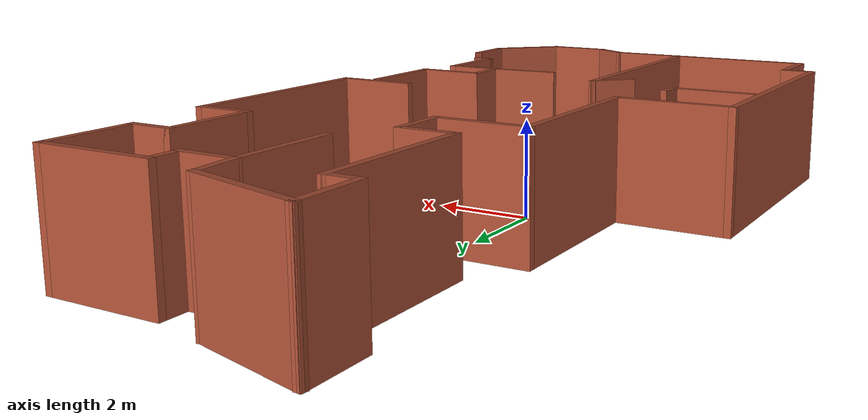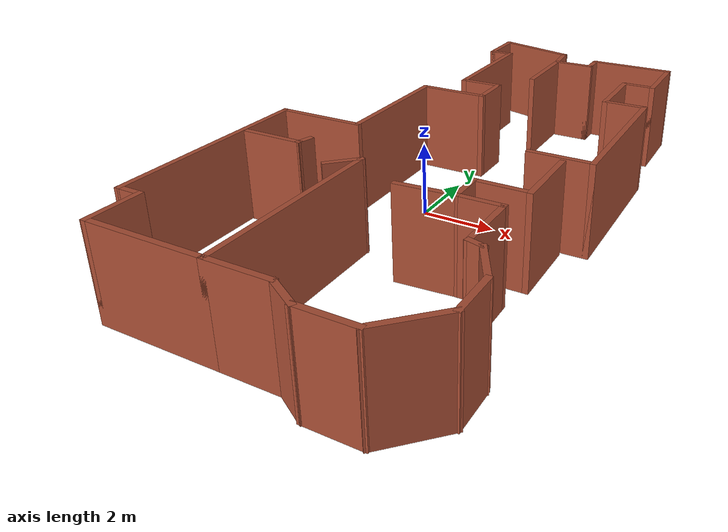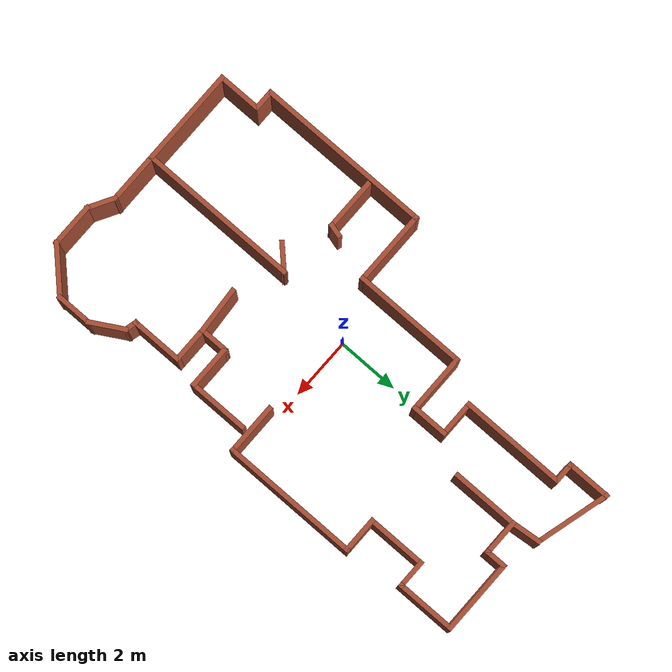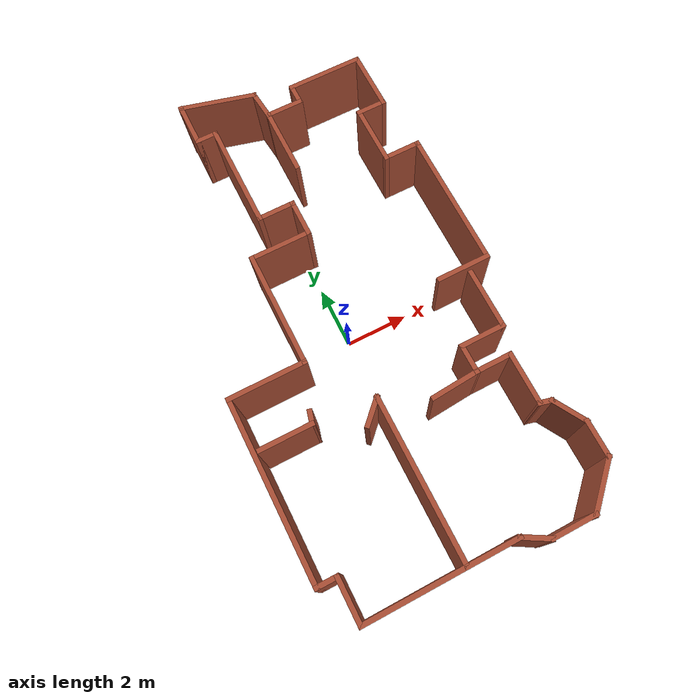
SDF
<?xml version='1.0'?>
<sdf version='1.6'>
  <model name='map_48'>
    <pose frame=''>0.307885 0.354091 0 0 -0 0</pose>
    <link name='Wall_0'>
      <collision name='Wall_0_Collision'>
        <geometry>
          <box>
            <size>2.5 0.15 2.5</size>
          </box>
        </geometry>
        <pose frame=''>0 0 1.25 0 -0 0</pose>
      </collision>
      <visual name='Wall_0_Visual'>
        <pose frame=''>0 0 1.25 0 -0 0</pose>
        <geometry>
          <box>
            <size>2.5 0.15 2.5</size>
          </box>
        </geometry>
        <material>
          <script>
            <uri>file://media/materials/scripts/gazebo.material</uri>
            <name>Gazebo/Bricks</name>
          </script>
          <ambient>1 1 1 1</ambient>
        </material>
        <meta>
          <layer>0</layer>
        </meta>
      </visual>
      <pose frame=''>-0.646801 8.09049 0 0 -0 2.87979</pose>
    </link>
    <link name='Wall_1'>
      <collision name='Wall_1_Collision'>
        <geometry>
          <box>
            <size>1.5 0.15 2.5</size>
          </box>
        </geometry>
        <pose frame=''>0 0 1.25 0 -0 0</pose>
      </collision>
      <visual name='Wall_1_Visual'>
        <pose frame=''>0 0 1.25 0 -0 0</pose>
        <geometry>
          <box>
            <size>1.5 0.15 2.5</size>
          </box>
        </geometry>
        <material>
          <script>
            <uri>file://media/materials/scripts/gazebo.material</uri>
            <name>Gazebo/Bricks</name>
          </script>
          <ambient>1 1 1 1</ambient>
        </material>
        <meta>
          <layer>0</layer>
        </meta>
      </visual>
      <pose frame=''>-1.78176 7.7196 0 0 -0 -1.5708</pose>
    </link>
    <link name='Wall_10'>
      <collision name='Wall_10_Collision'>
        <geometry>
          <box>
            <size>0.75 0.15 2.5</size>
          </box>
        </geometry>
        <pose frame=''>0 0 1.25 0 -0 0</pose>
      </collision>
      <visual name='Wall_10_Visual'>
        <pose frame=''>0 0 1.25 0 -0 0</pose>
        <geometry>
          <box>
            <size>0.75 0.15 2.5</size>
          </box>
        </geometry>
        <material>
          <script>
            <uri>file://media/materials/scripts/gazebo.material</uri>
            <name>Gazebo/Bricks</name>
          </script>
          <ambient>1 1 1 1</ambient>
        </material>
        <meta>
          <layer>0</layer>
        </meta>
      </visual>
      <pose frame=''>-3.98176 -6.60539 0 0 -0 0</pose>
    </link>
    <link name='Wall_11'>
      <collision name='Wall_11_Collision'>
        <geometry>
          <box>
            <size>1.5 0.15 2.5</size>
          </box>
        </geometry>
        <pose frame=''>0 0 1.25 0 -0 0</pose>
      </collision>
      <visual name='Wall_11_Visual'>
        <pose frame=''>0 0 1.25 0 -0 0</pose>
        <geometry>
          <box>
            <size>1.5 0.15 2.5</size>
          </box>
        </geometry>
        <material>
          <script>
            <uri>file://media/materials/scripts/gazebo.material</uri>
            <name>Gazebo/Bricks</name>
          </script>
          <ambient>1 1 1 1</ambient>
        </material>
        <meta>
          <layer>0</layer>
        </meta>
      </visual>
      <pose frame=''>-3.68176 -7.2804 0 0 -0 -1.5708</pose>
    </link>
    <link name='Wall_12'>
      <collision name='Wall_12_Collision'>
        <geometry>
          <box>
            <size>3.25 0.15 2.5</size>
          </box>
        </geometry>
        <pose frame=''>0 0 1.25 0 -0 0</pose>
      </collision>
      <visual name='Wall_12_Visual'>
        <pose frame=''>0 0 1.25 0 -0 0</pose>
        <geometry>
          <box>
            <size>3.25 0.15 2.5</size>
          </box>
        </geometry>
        <material>
          <script>
            <uri>file://media/materials/scripts/gazebo.material</uri>
            <name>Gazebo/Bricks</name>
          </script>
          <ambient>1 1 1 1</ambient>
        </material>
        <meta>
          <layer>0</layer>
        </meta>
      </visual>
      <pose frame=''>-2.13176 -7.9554 0 0 -0 0</pose>
    </link>
    <link name='Wall_13'>
      <collision name='Wall_13_Collision'>
        <geometry>
          <box>
            <size>5.25 0.15 2.5</size>
          </box>
        </geometry>
        <pose frame=''>0 0 1.25 0 -0 0</pose>
      </collision>
      <visual name='Wall_13_Visual'>
        <pose frame=''>0 0 1.25 0 -0 0</pose>
        <geometry>
          <box>
            <size>5.25 0.15 2.5</size>
          </box>
        </geometry>
        <material>
          <script>
            <uri>file://media/materials/scripts/gazebo.material</uri>
            <name>Gazebo/Bricks</name>
          </script>
          <ambient>1 1 1 1</ambient>
        </material>
        <meta>
          <layer>0</layer>
        </meta>
      </visual>
      <pose frame=''>-0.581764 -5.4054 0 0 -0 1.5708</pose>
    </link>
    <link name='Wall_15'>
      <collision name='Wall_15_Collision'>
        <geometry>
          <box>
            <size>1.75 0.15 2.5</size>
          </box>
        </geometry>
        <pose frame=''>0 0 1.25 0 -0 0</pose>
      </collision>
      <visual name='Wall_15_Visual'>
        <pose frame=''>0 0 1.25 0 -0 0</pose>
        <geometry>
          <box>
            <size>1.75 0.15 2.5</size>
          </box>
        </geometry>
        <material>
          <script>
            <uri>file://media/materials/scripts/gazebo.material</uri>
            <name>Gazebo/Bricks</name>
          </script>
          <ambient>1 1 1 1</ambient>
        </material>
        <meta>
          <layer>0</layer>
        </meta>
      </visual>
      <pose frame=''>0.218236 -7.9554 0 0 -0 0</pose>
    </link>
    <link name='Wall_16'>
      <collision name='Wall_16_Collision'>
        <geometry>
          <box>
            <size>1 0.15 2.5</size>
          </box>
        </geometry>
        <pose frame=''>0 0 1.25 0 -0 0</pose>
      </collision>
      <visual name='Wall_16_Visual'>
        <pose frame=''>0 0 1.25 0 -0 0</pose>
        <geometry>
          <box>
            <size>1 0.15 2.5</size>
          </box>
        </geometry>
        <material>
          <script>
            <uri>file://media/materials/scripts/gazebo.material</uri>
            <name>Gazebo/Bricks</name>
          </script>
          <ambient>1 1 1 1</ambient>
        </material>
        <meta>
          <layer>0</layer>
        </meta>
      </visual>
      <pose frame=''>1.3863 -8.16789 0 0 -0 -0.523599</pose>
    </link>
    <link name='Wall_17'>
      <collision name='Wall_17_Collision'>
        <geometry>
          <box>
            <size>1.5 0.15 2.5</size>
          </box>
        </geometry>
        <pose frame=''>0 0 1.25 0 -0 0</pose>
      </collision>
      <visual name='Wall_17_Visual'>
        <pose frame=''>0 0 1.25 0 -0 0</pose>
        <geometry>
          <box>
            <size>1.5 0.15 2.5</size>
          </box>
        </geometry>
        <material>
          <script>
            <uri>file://media/materials/scripts/gazebo.material</uri>
            <name>Gazebo/Bricks</name>
          </script>
          <ambient>1 1 1 1</ambient>
        </material>
        <meta>
          <layer>0</layer>
        </meta>
      </visual>
      <pose frame=''>2.42936 -8.3804 0 0 -0 0</pose>
    </link>
    <link name='Wall_18'>
      <collision name='Wall_18_Collision'>
        <geometry>
          <box>
            <size>1.75 0.15 2.5</size>
          </box>
        </geometry>
        <pose frame=''>0 0 1.25 0 -0 0</pose>
      </collision>
      <visual name='Wall_18_Visual'>
        <pose frame=''>0 0 1.25 0 -0 0</pose>
        <geometry>
          <box>
            <size>1.75 0.15 2.5</size>
          </box>
        </geometry>
        <material>
          <script>
            <uri>file://media/materials/scripts/gazebo.material</uri>
            <name>Gazebo/Bricks</name>
          </script>
          <ambient>1 1 1 1</ambient>
        </material>
        <meta>
          <layer>0</layer>
        </meta>
      </visual>
      <pose frame=''>3.67004 -7.81471 0 0 -0 0.785398</pose>
    </link>
    <link name='Wall_19'>
      <collision name='Wall_19_Collision'>
        <geometry>
          <box>
            <size>1.25 0.15 2.5</size>
          </box>
        </geometry>
        <pose frame=''>0 0 1.25 0 -0 0</pose>
      </collision>
      <visual name='Wall_19_Visual'>
        <pose frame=''>0 0 1.25 0 -0 0</pose>
        <geometry>
          <box>
            <size>1.25 0.15 2.5</size>
          </box>
        </geometry>
        <material>
          <script>
            <uri>file://media/materials/scripts/gazebo.material</uri>
            <name>Gazebo/Bricks</name>
          </script>
          <ambient>1 1 1 1</ambient>
        </material>
        <meta>
          <layer>0</layer>
        </meta>
      </visual>
      <pose frame=''>4.23573 -6.69902 0 0 -0 1.5708</pose>
    </link>
    <link name='Wall_2'>
      <collision name='Wall_2_Collision'>
        <geometry>
          <box>
            <size>0.75 0.15 2.5</size>
          </box>
        </geometry>
        <pose frame=''>0 0 1.25 0 -0 0</pose>
      </collision>
      <visual name='Wall_2_Visual'>
        <pose frame=''>0 0 1.25 0 -0 0</pose>
        <geometry>
          <box>
            <size>0.75 0.15 2.5</size>
          </box>
        </geometry>
        <material>
          <script>
            <uri>file://media/materials/scripts/gazebo.material</uri>
            <name>Gazebo/Bricks</name>
          </script>
          <ambient>1 1 1 1</ambient>
        </material>
        <meta>
          <layer>0</layer>
        </meta>
      </visual>
      <pose frame=''>-1.48176 7.0446 0 0 -0 0</pose>
    </link>
    <link name='Wall_20'>
      <collision name='Wall_20_Collision'>
        <geometry>
          <box>
            <size>1.25 0.15 2.5</size>
          </box>
        </geometry>
        <pose frame=''>0 0 1.25 0 -0 0</pose>
      </collision>
      <visual name='Wall_20_Visual'>
        <pose frame=''>0 0 1.25 0 -0 0</pose>
        <geometry>
          <box>
            <size>1.25 0.15 2.5</size>
          </box>
        </geometry>
        <material>
          <script>
            <uri>file://media/materials/scripts/gazebo.material</uri>
            <name>Gazebo/Bricks</name>
          </script>
          <ambient>1 1 1 1</ambient>
        </material>
        <meta>
          <layer>0</layer>
        </meta>
      </visual>
      <pose frame=''>3.96073 -5.67271 0 0 -0 2.0944</pose>
    </link>
    <link name='Wall_21'>
      <collision name='Wall_21_Collision'>
        <geometry>
          <box>
            <size>0.5 0.15 2.5</size>
          </box>
        </geometry>
        <pose frame=''>0 0 1.25 0 -0 0</pose>
      </collision>
      <visual name='Wall_21_Visual'>
        <pose frame=''>0 0 1.25 0 -0 0</pose>
        <geometry>
          <box>
            <size>0.5 0.15 2.5</size>
          </box>
        </geometry>
        <material>
          <script>
            <uri>file://media/materials/scripts/gazebo.material</uri>
            <name>Gazebo/Bricks</name>
          </script>
          <ambient>1 1 1 1</ambient>
        </material>
        <meta>
          <layer>0</layer>
        </meta>
      </visual>
      <pose frame=''>3.51669 -5.1511 0 0 -0 2.87979</pose>
    </link>
    <link name='Wall_22'>
      <collision name='Wall_22_Collision'>
        <geometry>
          <box>
            <size>1.75 0.15 2.5</size>
          </box>
        </geometry>
        <pose frame=''>0 0 1.25 0 -0 0</pose>
      </collision>
      <visual name='Wall_22_Visual'>
        <pose frame=''>0 0 1.25 0 -0 0</pose>
        <geometry>
          <box>
            <size>1.75 0.15 2.5</size>
          </box>
        </geometry>
        <material>
          <script>
            <uri>file://media/materials/scripts/gazebo.material</uri>
            <name>Gazebo/Bricks</name>
          </script>
          <ambient>1 1 1 1</ambient>
        </material>
        <meta>
          <layer>0</layer>
        </meta>
      </visual>
      <pose frame=''>3.34765 -4.30581 0 0 -0 1.5708</pose>
    </link>
    <link name='Wall_23'>
      <collision name='Wall_23_Collision'>
        <geometry>
          <box>
            <size>1.25 0.15 2.5</size>
          </box>
        </geometry>
        <pose frame=''>0 0 1.25 0 -0 0</pose>
      </collision>
      <visual name='Wall_23_Visual'>
        <pose frame=''>0 0 1.25 0 -0 0</pose>
        <geometry>
          <box>
            <size>1.25 0.15 2.5</size>
          </box>
        </geometry>
        <material>
          <script>
            <uri>file://media/materials/scripts/gazebo.material</uri>
            <name>Gazebo/Bricks</name>
          </script>
          <ambient>1 1 1 1</ambient>
        </material>
        <meta>
          <layer>0</layer>
        </meta>
      </visual>
      <pose frame=''>2.79765 -3.50581 0 0 -0 3.14159</pose>
    </link>
    <link name='Wall_24'>
      <collision name='Wall_24_Collision'>
        <geometry>
          <box>
            <size>1 0.15 2.5</size>
          </box>
        </geometry>
        <pose frame=''>0 0 1.25 0 -0 0</pose>
      </collision>
      <visual name='Wall_24_Visual'>
        <pose frame=''>0 0 1.25 0 -0 0</pose>
        <geometry>
          <box>
            <size>1 0.15 2.5</size>
          </box>
        </geometry>
        <material>
          <script>
            <uri>file://media/materials/scripts/gazebo.material</uri>
            <name>Gazebo/Bricks</name>
          </script>
          <ambient>1 1 1 1</ambient>
        </material>
        <meta>
          <layer>0</layer>
        </meta>
      </visual>
      <pose frame=''>2.24765 -3.08081 0 0 -0 1.5708</pose>
    </link>
    <link name='Wall_25'>
      <collision name='Wall_25_Collision'>
        <geometry>
          <box>
            <size>1.5 0.15 2.5</size>
          </box>
        </geometry>
        <pose frame=''>0 0 1.25 0 -0 0</pose>
      </collision>
      <visual name='Wall_25_Visual'>
        <pose frame=''>0 0 1.25 0 -0 0</pose>
        <geometry>
          <box>
            <size>1.5 0.15 2.5</size>
          </box>
        </geometry>
        <material>
          <script>
            <uri>file://media/materials/scripts/gazebo.material</uri>
            <name>Gazebo/Bricks</name>
          </script>
          <ambient>1 1 1 1</ambient>
        </material>
        <meta>
          <layer>0</layer>
        </meta>
      </visual>
      <pose frame=''>2.92265 -2.65581 0 0 -0 0</pose>
    </link>
    <link name='Wall_26'>
      <collision name='Wall_26_Collision'>
        <geometry>
          <box>
            <size>2 0.15 2.5</size>
          </box>
        </geometry>
        <pose frame=''>0 0 1.25 0 -0 0</pose>
      </collision>
      <visual name='Wall_26_Visual'>
        <pose frame=''>0 0 1.25 0 -0 0</pose>
        <geometry>
          <box>
            <size>2 0.15 2.5</size>
          </box>
        </geometry>
        <material>
          <script>
            <uri>file://media/materials/scripts/gazebo.material</uri>
            <name>Gazebo/Bricks</name>
          </script>
          <ambient>1 1 1 1</ambient>
        </material>
        <meta>
          <layer>0</layer>
        </meta>
      </visual>
      <pose frame=''>3.59765 -1.73081 0 0 -0 1.5708</pose>
    </link>
    <link name='Wall_28'>
      <collision name='Wall_28_Collision'>
        <geometry>
          <box>
            <size>1.75 0.15 2.5</size>
          </box>
        </geometry>
        <pose frame=''>0 0 1.25 0 -0 0</pose>
      </collision>
      <visual name='Wall_28_Visual'>
        <pose frame=''>0 0 1.25 0 -0 0</pose>
        <geometry>
          <box>
            <size>1.75 0.15 2.5</size>
          </box>
        </geometry>
        <material>
          <script>
            <uri>file://media/materials/scripts/gazebo.material</uri>
            <name>Gazebo/Bricks</name>
          </script>
          <ambient>1 1 1 1</ambient>
        </material>
        <meta>
          <layer>0</layer>
        </meta>
      </visual>
      <pose frame=''>3.48176 -0.56001 0 0 -0 0</pose>
    </link>
    <link name='Wall_29'>
      <collision name='Wall_29_Collision'>
        <geometry>
          <box>
            <size>4.5 0.15 2.5</size>
          </box>
        </geometry>
        <pose frame=''>0 0 1.25 0 -0 0</pose>
      </collision>
      <visual name='Wall_29_Visual'>
        <pose frame=''>0 0 1.25 0 -0 0</pose>
        <geometry>
          <box>
            <size>4.5 0.15 2.5</size>
          </box>
        </geometry>
        <material>
          <script>
            <uri>file://media/materials/scripts/gazebo.material</uri>
            <name>Gazebo/Bricks</name>
          </script>
          <ambient>1 1 1 1</ambient>
        </material>
        <meta>
          <layer>0</layer>
        </meta>
      </visual>
      <pose frame=''>4.28176 1.61499 0 0 -0 1.5708</pose>
    </link>
    <link name='Wall_3'>
      <collision name='Wall_3_Collision'>
        <geometry>
          <box>
            <size>3.5 0.15 2.5</size>
          </box>
        </geometry>
        <pose frame=''>0 0 1.25 0 -0 0</pose>
      </collision>
      <visual name='Wall_3_Visual'>
        <pose frame=''>0 0 1.25 0 -0 0</pose>
        <geometry>
          <box>
            <size>3.5 0.15 2.5</size>
          </box>
        </geometry>
        <material>
          <script>
            <uri>file://media/materials/scripts/gazebo.material</uri>
            <name>Gazebo/Bricks</name>
          </script>
          <ambient>1 1 1 1</ambient>
        </material>
        <meta>
          <layer>0</layer>
        </meta>
      </visual>
      <pose frame=''>-1.18176 5.3696 0 0 -0 -1.5708</pose>
    </link>
    <link name='Wall_30'>
      <collision name='Wall_30_Collision'>
        <geometry>
          <box>
            <size>1.25 0.15 2.5</size>
          </box>
        </geometry>
        <pose frame=''>0 0 1.25 0 -0 0</pose>
      </collision>
      <visual name='Wall_30_Visual'>
        <pose frame=''>0 0 1.25 0 -0 0</pose>
        <geometry>
          <box>
            <size>1.25 0.15 2.5</size>
          </box>
        </geometry>
        <material>
          <script>
            <uri>file://media/materials/scripts/gazebo.material</uri>
            <name>Gazebo/Bricks</name>
          </script>
          <ambient>1 1 1 1</ambient>
        </material>
        <meta>
          <layer>0</layer>
        </meta>
      </visual>
      <pose frame=''>3.73176 3.78999 0 0 -0 3.14159</pose>
    </link>
    <link name='Wall_31'>
      <collision name='Wall_31_Collision'>
        <geometry>
          <box>
            <size>2 0.15 2.5</size>
          </box>
        </geometry>
        <pose frame=''>0 0 1.25 0 -0 0</pose>
      </collision>
      <visual name='Wall_31_Visual'>
        <pose frame=''>0 0 1.25 0 -0 0</pose>
        <geometry>
          <box>
            <size>2 0.15 2.5</size>
          </box>
        </geometry>
        <material>
          <script>
            <uri>file://media/materials/scripts/gazebo.material</uri>
            <name>Gazebo/Bricks</name>
          </script>
          <ambient>1 1 1 1</ambient>
        </material>
        <meta>
          <layer>0</layer>
        </meta>
      </visual>
      <pose frame=''>3.18176 4.71499 0 0 -0 1.5708</pose>
    </link>
    <link name='Wall_32'>
      <collision name='Wall_32_Collision'>
        <geometry>
          <box>
            <size>1 0.15 2.5</size>
          </box>
        </geometry>
        <pose frame=''>0 0 1.25 0 -0 0</pose>
      </collision>
      <visual name='Wall_32_Visual'>
        <pose frame=''>0 0 1.25 0 -0 0</pose>
        <geometry>
          <box>
            <size>1 0.15 2.5</size>
          </box>
        </geometry>
        <material>
          <script>
            <uri>file://media/materials/scripts/gazebo.material</uri>
            <name>Gazebo/Bricks</name>
          </script>
          <ambient>1 1 1 1</ambient>
        </material>
        <meta>
          <layer>0</layer>
        </meta>
      </visual>
      <pose frame=''>3.60676 5.63999 0 0 -0 0</pose>
    </link>
    <link name='Wall_33'>
      <collision name='Wall_33_Collision'>
        <geometry>
          <box>
            <size>2 0.15 2.5</size>
          </box>
        </geometry>
        <pose frame=''>0 0 1.25 0 -0 0</pose>
      </collision>
      <visual name='Wall_33_Visual'>
        <pose frame=''>0 0 1.25 0 -0 0</pose>
        <geometry>
          <box>
            <size>2 0.15 2.5</size>
          </box>
        </geometry>
        <material>
          <script>
            <uri>file://media/materials/scripts/gazebo.material</uri>
            <name>Gazebo/Bricks</name>
          </script>
          <ambient>1 1 1 1</ambient>
        </material>
        <meta>
          <layer>0</layer>
        </meta>
      </visual>
      <pose frame=''>4.03176 6.56499 0 0 -0 1.5708</pose>
    </link>
    <link name='Wall_34'>
      <collision name='Wall_34_Collision'>
        <geometry>
          <box>
            <size>2.5 0.15 2.5</size>
          </box>
        </geometry>
        <pose frame=''>0 0 1.25 0 -0 0</pose>
      </collision>
      <visual name='Wall_34_Visual'>
        <pose frame=''>0 0 1.25 0 -0 0</pose>
        <geometry>
          <box>
            <size>2.5 0.15 2.5</size>
          </box>
        </geometry>
        <material>
          <script>
            <uri>file://media/materials/scripts/gazebo.material</uri>
            <name>Gazebo/Bricks</name>
          </script>
          <ambient>1 1 1 1</ambient>
        </material>
        <meta>
          <layer>0</layer>
        </meta>
      </visual>
      <pose frame=''>2.85676 7.48999 0 0 -0 3.14159</pose>
    </link>
    <link name='Wall_35'>
      <collision name='Wall_35_Collision'>
        <geometry>
          <box>
            <size>0.75 0.15 2.5</size>
          </box>
        </geometry>
        <pose frame=''>0 0 1.25 0 -0 0</pose>
      </collision>
      <visual name='Wall_35_Visual'>
        <pose frame=''>0 0 1.25 0 -0 0</pose>
        <geometry>
          <box>
            <size>0.75 0.15 2.5</size>
          </box>
        </geometry>
        <material>
          <script>
            <uri>file://media/materials/scripts/gazebo.material</uri>
            <name>Gazebo/Bricks</name>
          </script>
          <ambient>1 1 1 1</ambient>
        </material>
        <meta>
          <layer>0</layer>
        </meta>
      </visual>
      <pose frame=''>1.68176 7.18999 0 0 -0 -1.5708</pose>
    </link>
    <link name='Wall_36'>
      <collision name='Wall_36_Collision'>
        <geometry>
          <box>
            <size>1.25 0.15 2.5</size>
          </box>
        </geometry>
        <pose frame=''>0 0 1.25 0 -0 0</pose>
      </collision>
      <visual name='Wall_36_Visual'>
        <pose frame=''>0 0 1.25 0 -0 0</pose>
        <geometry>
          <box>
            <size>1.25 0.15 2.5</size>
          </box>
        </geometry>
        <material>
          <script>
            <uri>file://media/materials/scripts/gazebo.material</uri>
            <name>Gazebo/Bricks</name>
          </script>
          <ambient>1 1 1 1</ambient>
        </material>
        <meta>
          <layer>0</layer>
        </meta>
      </visual>
      <pose frame=''>1.13176 6.88999 0 0 -0 3.14159</pose>
    </link>
    <link name='Wall_37'>
      <collision name='Wall_37_Collision'>
        <geometry>
          <box>
            <size>1.05126 0.15 2.5</size>
          </box>
        </geometry>
        <pose frame=''>0 0 1.25 0 -0 0</pose>
      </collision>
      <visual name='Wall_37_Visual'>
        <pose frame=''>0 0 1.25 0 -0 0</pose>
        <geometry>
          <box>
            <size>1.05126 0.15 2.5</size>
          </box>
        </geometry>
        <material>
          <script>
            <uri>file://media/materials/scripts/gazebo.material</uri>
            <name>Gazebo/Bricks</name>
          </script>
          <ambient>1 1 1 1</ambient>
        </material>
        <meta>
          <layer>0</layer>
        </meta>
      </visual>
      <pose frame=''>0.534963 7.33819 0 0 -0 1.67484</pose>
    </link>
    <link name='Wall_4'>
      <collision name='Wall_4_Collision'>
        <geometry>
          <box>
            <size>1.25 0.15 2.5</size>
          </box>
        </geometry>
        <pose frame=''>0 0 1.25 0 -0 0</pose>
      </collision>
      <visual name='Wall_4_Visual'>
        <pose frame=''>0 0 1.25 0 -0 0</pose>
        <geometry>
          <box>
            <size>1.25 0.15 2.5</size>
          </box>
        </geometry>
        <material>
          <script>
            <uri>file://media/materials/scripts/gazebo.material</uri>
            <name>Gazebo/Bricks</name>
          </script>
          <ambient>1 1 1 1</ambient>
        </material>
        <meta>
          <layer>0</layer>
        </meta>
      </visual>
      <pose frame=''>-0.631764 3.69461 0 0 -0 0</pose>
    </link>
    <link name='Wall_40'>
      <collision name='Wall_40_Collision'>
        <geometry>
          <box>
            <size>1.59222 0.15 2.5</size>
          </box>
        </geometry>
        <pose frame=''>0 0 1.25 0 -0 0</pose>
      </collision>
      <visual name='Wall_40_Visual'>
        <pose frame=''>0 0 1.25 0 -0 0</pose>
        <geometry>
          <box>
            <size>1.59222 0.15 2.5</size>
          </box>
        </geometry>
        <material>
          <script>
            <uri>file://media/materials/scripts/gazebo.material</uri>
            <name>Gazebo/Bricks</name>
          </script>
          <ambient>1 1 1 1</ambient>
        </material>
        <meta>
          <layer>0</layer>
        </meta>
      </visual>
      <pose frame=''>1.52842 -3.55773 0 0 -0 0.072064</pose>
    </link>
    <link name='Wall_43'>
      <collision name='Wall_43_Collision'>
        <geometry>
          <box>
            <size>1.75 0.15 2.5</size>
          </box>
        </geometry>
        <pose frame=''>0 0 1.25 0 -0 0</pose>
      </collision>
      <visual name='Wall_43_Visual'>
        <pose frame=''>0 0 1.25 0 -0 0</pose>
        <geometry>
          <box>
            <size>1.75 0.15 2.5</size>
          </box>
        </geometry>
        <material>
          <script>
            <uri>file://media/materials/scripts/gazebo.material</uri>
            <name>Gazebo/Bricks</name>
          </script>
          <ambient>1 1 1 1</ambient>
        </material>
        <meta>
          <layer>0</layer>
        </meta>
      </visual>
      <pose frame=''>-3.31305 -2.70011 0 0 -0 0</pose>
    </link>
    <link name='Wall_44'>
      <collision name='Wall_44_Collision'>
        <geometry>
          <box>
            <size>0.5 0.15 2.5</size>
          </box>
        </geometry>
        <pose frame=''>0 0 1.25 0 -0 0</pose>
      </collision>
      <visual name='Wall_44_Visual'>
        <pose frame=''>0 0 1.25 0 -0 0</pose>
        <geometry>
          <box>
            <size>0.5 0.15 2.5</size>
          </box>
        </geometry>
        <material>
          <script>
            <uri>file://media/materials/scripts/gazebo.material</uri>
            <name>Gazebo/Bricks</name>
          </script>
          <ambient>1 1 1 1</ambient>
        </material>
        <meta>
          <layer>0</layer>
        </meta>
      </visual>
      <pose frame=''>-2.46776 -2.53107 0 0 -0 1.309</pose>
    </link>
    <link name='Wall_46'>
      <collision name='Wall_46_Collision'>
        <geometry>
          <box>
            <size>1 0.15 2.5</size>
          </box>
        </geometry>
        <pose frame=''>0 0 1.25 0 -0 0</pose>
      </collision>
      <visual name='Wall_46_Visual'>
        <pose frame=''>0 0 1.25 0 -0 0</pose>
        <geometry>
          <box>
            <size>1 0.15 2.5</size>
          </box>
        </geometry>
        <material>
          <script>
            <uri>file://media/materials/scripts/gazebo.material</uri>
            <name>Gazebo/Bricks</name>
          </script>
          <ambient>1 1 1 1</ambient>
        </material>
        <meta>
          <layer>0</layer>
        </meta>
      </visual>
      <pose frame=''>-0.882284 -3.15591 0 0 -0 -2.35619</pose>
    </link>
    <link name='Wall_5'>
      <collision name='Wall_5_Collision'>
        <geometry>
          <box>
            <size>1.25 0.15 2.5</size>
          </box>
        </geometry>
        <pose frame=''>0 0 1.25 0 -0 0</pose>
      </collision>
      <visual name='Wall_5_Visual'>
        <pose frame=''>0 0 1.25 0 -0 0</pose>
        <geometry>
          <box>
            <size>1.25 0.15 2.5</size>
          </box>
        </geometry>
        <material>
          <script>
            <uri>file://media/materials/scripts/gazebo.material</uri>
            <name>Gazebo/Bricks</name>
          </script>
          <ambient>1 1 1 1</ambient>
        </material>
        <meta>
          <layer>0</layer>
        </meta>
      </visual>
      <pose frame=''>-0.081764 3.1446 0 0 -0 -1.5708</pose>
    </link>
    <link name='Wall_50'>
      <collision name='Wall_50_Collision'>
        <geometry>
          <box>
            <size>2.25 0.15 2.5</size>
          </box>
        </geometry>
        <pose frame=''>0 0 1.25 0 -0 0</pose>
      </collision>
      <visual name='Wall_50_Visual'>
        <pose frame=''>0 0 1.25 0 -0 0</pose>
        <geometry>
          <box>
            <size>2.25 0.15 2.5</size>
          </box>
        </geometry>
        <material>
          <script>
            <uri>file://media/materials/scripts/gazebo.material</uri>
            <name>Gazebo/Bricks</name>
          </script>
          <ambient>1 1 1 1</ambient>
        </material>
        <meta>
          <layer>0</layer>
        </meta>
      </visual>
      <pose frame=''>0.581764 5.83999 0 0 -0 -1.5708</pose>
    </link>
    <link name='Wall_6'>
      <collision name='Wall_6_Collision'>
        <geometry>
          <box>
            <size>2 0.15 2.5</size>
          </box>
        </geometry>
        <pose frame=''>0 0 1.25 0 -0 0</pose>
      </collision>
      <visual name='Wall_6_Visual'>
        <pose frame=''>0 0 1.25 0 -0 0</pose>
        <geometry>
          <box>
            <size>2 0.15 2.5</size>
          </box>
        </geometry>
        <material>
          <script>
            <uri>file://media/materials/scripts/gazebo.material</uri>
            <name>Gazebo/Bricks</name>
          </script>
          <ambient>1 1 1 1</ambient>
        </material>
        <meta>
          <layer>0</layer>
        </meta>
      </visual>
      <pose frame=''>-1.00676 2.59461 0 0 -0 3.14159</pose>
    </link>
    <link name='Wall_7'>
      <collision name='Wall_7_Collision'>
        <geometry>
          <box>
            <size>3.75 0.15 2.5</size>
          </box>
        </geometry>
        <pose frame=''>0 0 1.25 0 -0 0</pose>
      </collision>
      <visual name='Wall_7_Visual'>
        <pose frame=''>0 0 1.25 0 -0 0</pose>
        <geometry>
          <box>
            <size>3.75 0.15 2.5</size>
          </box>
        </geometry>
        <material>
          <script>
            <uri>file://media/materials/scripts/gazebo.material</uri>
            <name>Gazebo/Bricks</name>
          </script>
          <ambient>1 1 1 1</ambient>
        </material>
        <meta>
          <layer>0</layer>
        </meta>
      </visual>
      <pose frame=''>-1.93176 0.794605 0 0 -0 -1.5708</pose>
    </link>
    <link name='Wall_8'>
      <collision name='Wall_8_Collision'>
        <geometry>
          <box>
            <size>2.5 0.15 2.5</size>
          </box>
        </geometry>
        <pose frame=''>0 0 1.25 0 -0 0</pose>
      </collision>
      <visual name='Wall_8_Visual'>
        <pose frame=''>0 0 1.25 0 -0 0</pose>
        <geometry>
          <box>
            <size>2.5 0.15 2.5</size>
          </box>
        </geometry>
        <material>
          <script>
            <uri>file://media/materials/scripts/gazebo.material</uri>
            <name>Gazebo/Bricks</name>
          </script>
          <ambient>1 1 1 1</ambient>
        </material>
        <meta>
          <layer>0</layer>
        </meta>
      </visual>
      <pose frame=''>-3.10676 -1.0054 0 0 -0 3.14159</pose>
    </link>
    <link name='Wall_9'>
      <collision name='Wall_9_Collision'>
        <geometry>
          <box>
            <size>5.75 0.15 2.5</size>
          </box>
        </geometry>
        <pose frame=''>0 0 1.25 0 -0 0</pose>
      </collision>
      <visual name='Wall_9_Visual'>
        <pose frame=''>0 0 1.25 0 -0 0</pose>
        <geometry>
          <box>
            <size>5.75 0.15 2.5</size>
          </box>
        </geometry>
        <material>
          <script>
            <uri>file://media/materials/scripts/gazebo.material</uri>
            <name>Gazebo/Bricks</name>
          </script>
          <ambient>1 1 1 1</ambient>
        </material>
        <meta>
          <layer>0</layer>
        </meta>
      </visual>
      <pose frame=''>-4.28176 -3.80539 0 0 -0 -1.5708</pose>
    </link>
    <static>1</static>
  </model>
</sdf>
